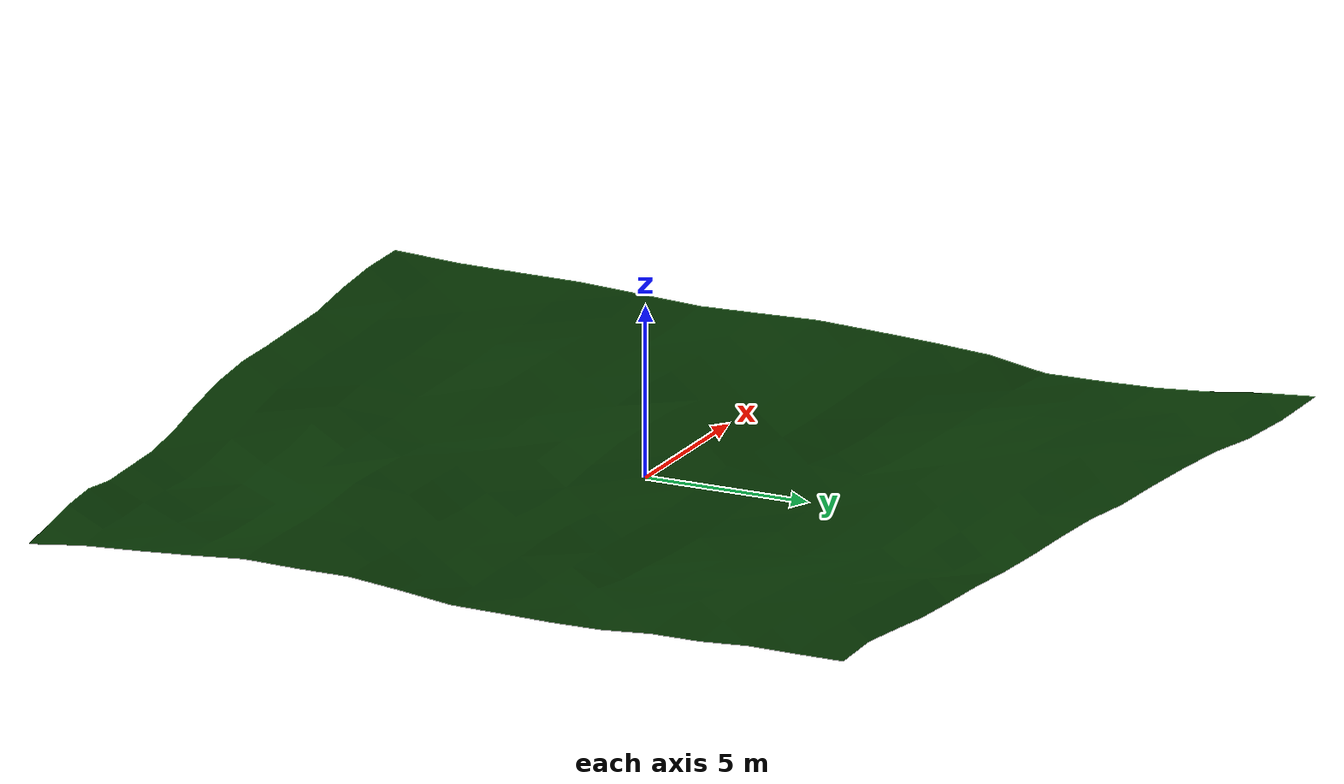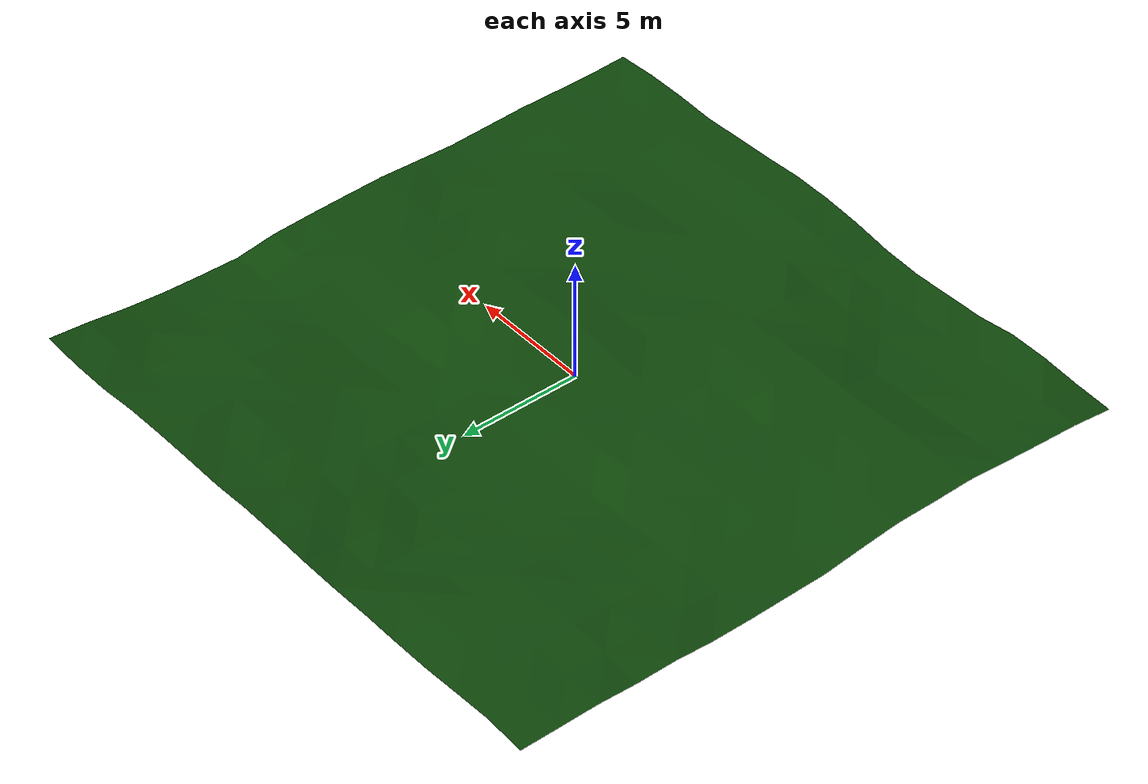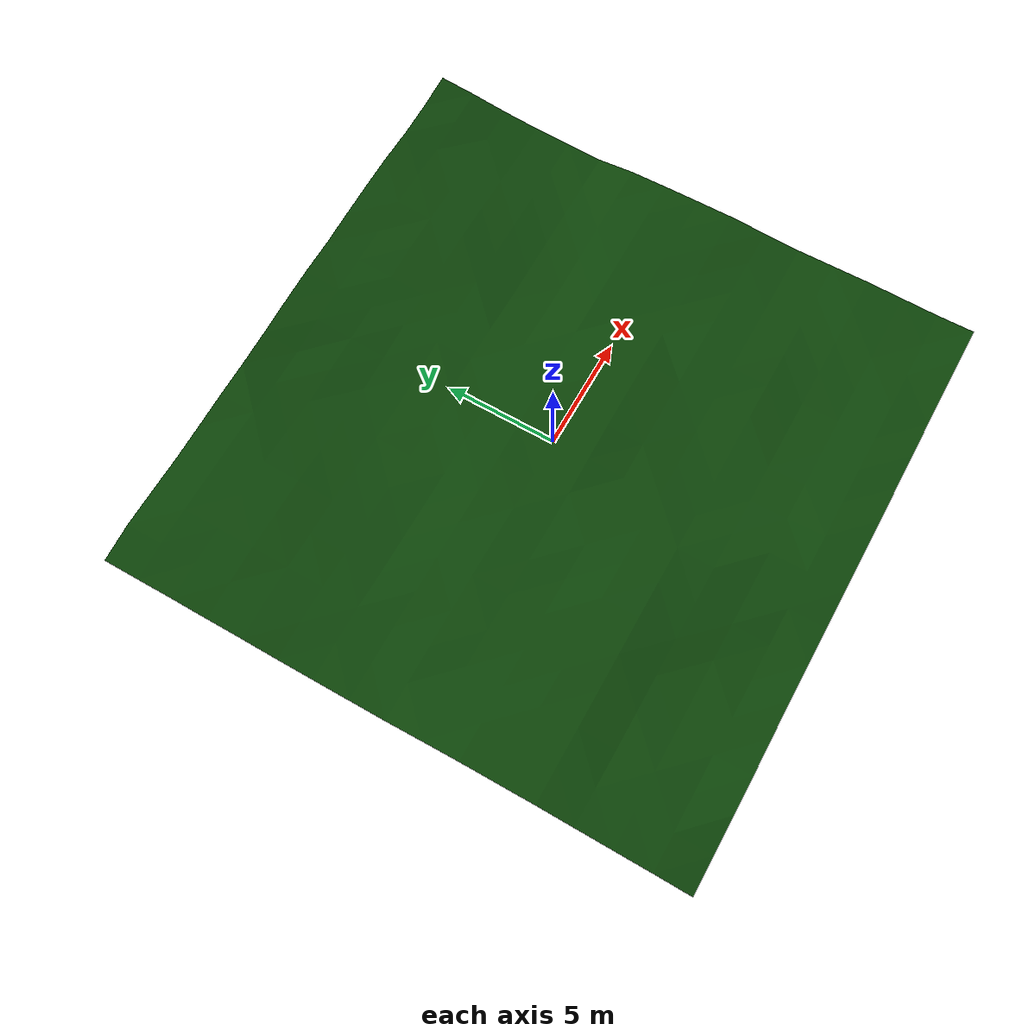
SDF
<?xml version="1.0" ?>
<sdf version="1.5">
  <model name="ground">
    <static>true</static>
    <pose>0 0 0 0 0 0</pose>
    <link name="ground_link">
      <collision name="collision">
        <geometry>
          <mesh>
            <uri>model://ground/ground.dae</uri>
            <scale>1 1 1</scale>
          </mesh>
        </geometry>
        <surface>
        <friction>
          <ode>
            <mu>50.0</mu>
            <mu2>50.0</mu2>
            <fdir1>0.000000 0.000000 0.000000</fdir1>
            <slip1>0.000000</slip1>
            <slip2>0.000000</slip2>
          </ode>
        </friction>
      </surface>
      </collision>
      <visual name="visual">
        <geometry>
          <mesh>
            <uri>model://ground/ground.dae</uri>
            <scale>1 1 1</scale>
          </mesh>
        </geometry>
        <cast_shadows>true</cast_shadows>
      </visual>
    </link>
  </model>
</sdf>
